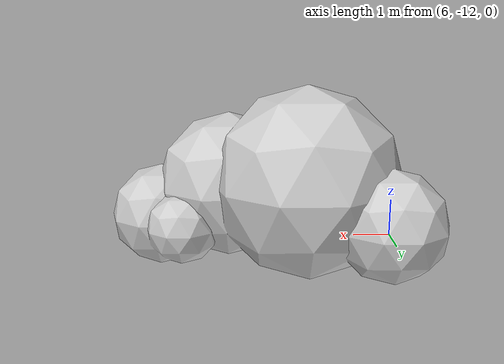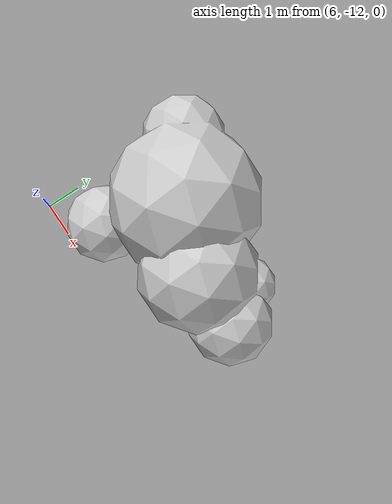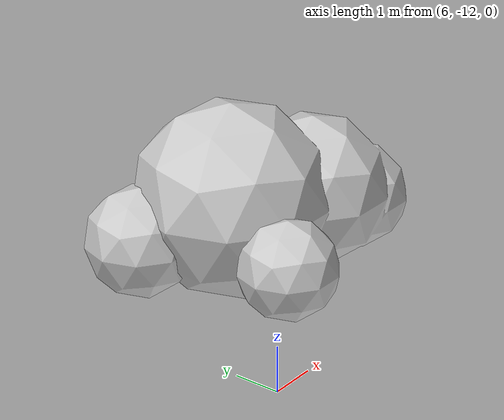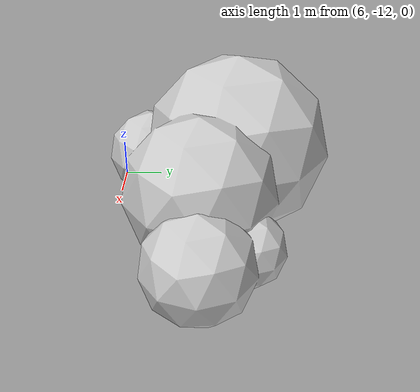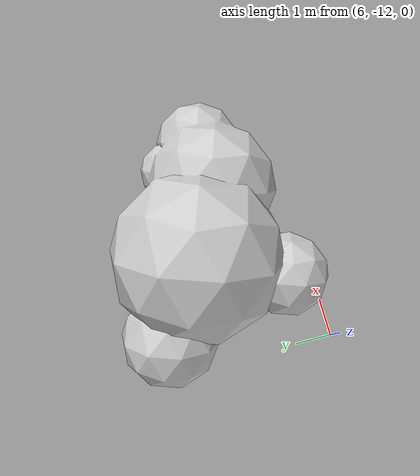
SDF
<sdf version="1.7">
<model name="rocks_3">
    <static>true</static>
    <link name="rocks_3">
        <pose>0 0 0 0 0 0</pose>
        <collision name="rocks_3_collision">
            <geometry>
                <mesh>
                    <uri>model://rocks_3/meshes/rocks_3.dae</uri>
                </mesh>
            </geometry>
        </collision>
        <visual name="rocks_3_visual">
            <geometry>
                <mesh>
                    <uri>model://rocks_3/meshes/rocks_3.dae</uri>
                </mesh>
            </geometry>
        </visual>
    </link>
</model>
</sdf>
